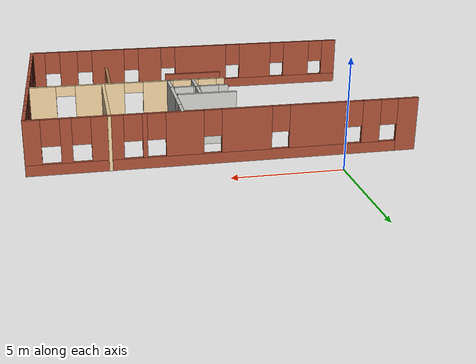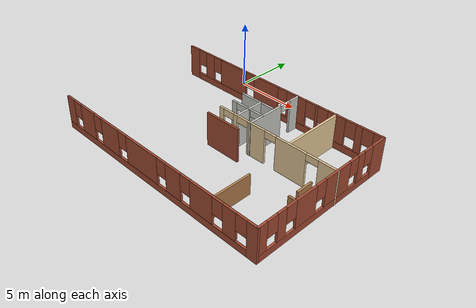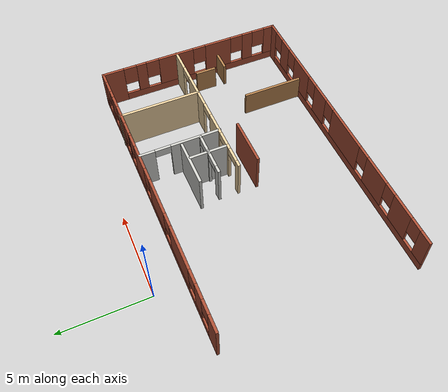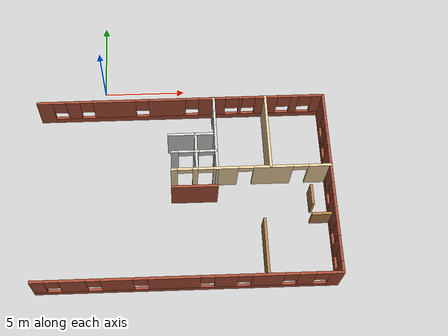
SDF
<sdf version="1.6">
 <model name="Building">
  <pose>4.29574 -7.32604 0 0 -0 0</pose>
  <link name="Wall_0">
   <pose>0.434915 5.53865 0 0 -0 0</pose>
   <visual name="Wall_0_Visual_0">
    <pose>-8.26944 0 1.25 0 -0 0</pose>
    <geometry><box><size>0.961111 0.15 2.5</size></box></geometry>
    <material>
     <script><uri>file://media/materials/scripts/gazebo.material</uri><name>Gazebo/Bricks</name></script>
     <ambient>1 1 1 1</ambient>
    </material>
    <meta><layer>0</layer></meta>
   </visual>
   <collision name="Wall_0_Collision_0">
    <geometry><box><size>0.961111 0.15 2.5</size></box></geometry>
    <pose>-8.26944 0 1.25 0 -0 0</pose>
   </collision>
   <visual name="Wall_0_Visual_1">
    <pose>0.480555 0 0.25 0 -0 0</pose>
    <geometry><box><size>16.5389 0.15 0.5</size></box></geometry>
    <material>
     <script><uri>file://media/materials/scripts/gazebo.material</uri><name>Gazebo/Bricks</name></script>
     <ambient>1 1 1 1</ambient>
    </material>
    <meta><layer>0</layer></meta>
   </visual>
   <collision name="Wall_0_Collision_1">
    <geometry><box><size>16.5389 0.15 0.5</size></box></geometry>
    <pose>0.480555 0 0.25 0 -0 0</pose>
   </collision>
   <visual name="Wall_0_Visual_2">
    <pose>-6.56423 0 1.5 0 -0 0</pose>
    <geometry><box><size>0.849313 0.15 2</size></box></geometry>
    <material>
     <script><uri>file://media/materials/scripts/gazebo.material</uri><name>Gazebo/Bricks</name></script>
     <ambient>1 1 1 1</ambient>
    </material>
    <meta><layer>0</layer></meta>
   </visual>
   <collision name="Wall_0_Collision_2">
    <geometry><box><size>0.849313 0.15 2</size></box></geometry>
    <pose>-6.56423 0 1.5 0 -0 0</pose>
   </collision>
   <visual name="Wall_0_Visual_3">
    <pose>-4.04638 0 1.5 0 -0 0</pose>
    <geometry><box><size>2.5864 0.15 2</size></box></geometry>
    <material>
     <script><uri>file://media/materials/scripts/gazebo.material</uri><name>Gazebo/Bricks</name></script>
     <ambient>1 1 1 1</ambient>
    </material>
    <meta><layer>0</layer></meta>
   </visual>
   <collision name="Wall_0_Collision_3">
    <geometry><box><size>2.5864 0.15 2</size></box></geometry>
    <pose>-4.04638 0 1.5 0 -0 0</pose>
   </collision>
   <visual name="Wall_0_Visual_4">
    <pose>-0.828204 0 1.5 0 -0 0</pose>
    <geometry><box><size>2.24994 0.15 2</size></box></geometry>
    <material>
     <script><uri>file://media/materials/scripts/gazebo.material</uri><name>Gazebo/Bricks</name></script>
     <ambient>1 1 1 1</ambient>
    </material>
    <meta><layer>0</layer></meta>
   </visual>
   <collision name="Wall_0_Collision_4">
    <geometry><box><size>2.24994 0.15 2</size></box></geometry>
    <pose>-0.828204 0 1.5 0 -0 0</pose>
   </collision>
   <visual name="Wall_0_Visual_5">
    <pose>1.92369 0 1.5 0 -0 0</pose>
    <geometry><box><size>1.65386 0.15 2</size></box></geometry>
    <material>
     <script><uri>file://media/materials/scripts/gazebo.material</uri><name>Gazebo/Bricks</name></script>
     <ambient>1 1 1 1</ambient>
    </material>
    <meta><layer>0</layer></meta>
   </visual>
   <collision name="Wall_0_Collision_5">
    <geometry><box><size>1.65386 0.15 2</size></box></geometry>
    <pose>1.92369 0 1.5 0 -0 0</pose>
   </collision>
   <visual name="Wall_0_Visual_6">
    <pose>3.65346 0 1.5 0 -0 0</pose>
    <geometry><box><size>0.205679 0.15 2</size></box></geometry>
    <material>
     <script><uri>file://media/materials/scripts/gazebo.material</uri><name>Gazebo/Bricks</name></script>
     <ambient>1 1 1 1</ambient>
    </material>
    <meta><layer>0</layer></meta>
   </visual>
   <collision name="Wall_0_Collision_6">
    <geometry><box><size>0.205679 0.15 2</size></box></geometry>
    <pose>3.65346 0 1.5 0 -0 0</pose>
   </collision>
   <visual name="Wall_0_Visual_7">
    <pose>5.24243 0 1.5 0 -0 0</pose>
    <geometry><box><size>1.37227 0.15 2</size></box></geometry>
    <material>
     <script><uri>file://media/materials/scripts/gazebo.material</uri><name>Gazebo/Bricks</name></script>
     <ambient>1 1 1 1</ambient>
    </material>
    <meta><layer>0</layer></meta>
   </visual>
   <collision name="Wall_0_Collision_7">
    <geometry><box><size>1.37227 0.15 2</size></box></geometry>
    <pose>5.24243 0 1.5 0 -0 0</pose>
   </collision>
   <visual name="Wall_0_Visual_8">
    <pose>6.9722 0 1.5 0 -0 0</pose>
    <geometry><box><size>0.487269 0.15 2</size></box></geometry>
    <material>
     <script><uri>file://media/materials/scripts/gazebo.material</uri><name>Gazebo/Bricks</name></script>
     <ambient>1 1 1 1</ambient>
    </material>
    <meta><layer>0</layer></meta>
   </visual>
   <collision name="Wall_0_Collision_8">
    <geometry><box><size>0.487269 0.15 2</size></box></geometry>
    <pose>6.9722 0 1.5 0 -0 0</pose>
   </collision>
   <visual name="Wall_0_Visual_9">
    <pose>8.38292 0 1.5 0 -0 0</pose>
    <geometry><box><size>0.734164 0.15 2</size></box></geometry>
    <material>
     <script><uri>file://media/materials/scripts/gazebo.material</uri><name>Gazebo/Bricks</name></script>
     <ambient>1 1 1 1</ambient>
    </material>
    <meta><layer>0</layer></meta>
   </visual>
   <collision name="Wall_0_Collision_9">
    <geometry><box><size>0.734164 0.15 2</size></box></geometry>
    <pose>8.38292 0 1.5 0 -0 0</pose>
   </collision>
   <visual name="Wall_0_Visual_10">
    <pose>-7.38889 0 1.9 0 -0 0</pose>
    <geometry><box><size>0.8 0.15 1.2</size></box></geometry>
    <material>
     <script><uri>file://media/materials/scripts/gazebo.material</uri><name>Gazebo/Bricks</name></script>
     <ambient>1 1 1 1</ambient>
    </material>
    <meta><layer>0</layer></meta>
   </visual>
   <collision name="Wall_0_Collision_10">
    <geometry><box><size>0.8 0.15 1.2</size></box></geometry>
    <pose>-7.38889 0 1.9 0 -0 0</pose>
   </collision>
   <visual name="Wall_0_Visual_11">
    <pose>-5.73958 0 1.9 0 -0 0</pose>
    <geometry><box><size>0.8 0.15 1.2</size></box></geometry>
    <material>
     <script><uri>file://media/materials/scripts/gazebo.material</uri><name>Gazebo/Bricks</name></script>
     <ambient>1 1 1 1</ambient>
    </material>
    <meta><layer>0</layer></meta>
   </visual>
   <collision name="Wall_0_Collision_11">
    <geometry><box><size>0.8 0.15 1.2</size></box></geometry>
    <pose>-5.73958 0 1.9 0 -0 0</pose>
   </collision>
   <visual name="Wall_0_Visual_12">
    <pose>-2.35317 0 1.9 0 -0 0</pose>
    <geometry><box><size>0.8 0.15 1.2</size></box></geometry>
    <material>
     <script><uri>file://media/materials/scripts/gazebo.material</uri><name>Gazebo/Bricks</name></script>
     <ambient>1 1 1 1</ambient>
    </material>
    <meta><layer>0</layer></meta>
   </visual>
   <collision name="Wall_0_Collision_12">
    <geometry><box><size>0.8 0.15 1.2</size></box></geometry>
    <pose>-2.35317 0 1.9 0 -0 0</pose>
   </collision>
   <visual name="Wall_0_Visual_13">
    <pose>0.696767 0 1.9 0 -0 0</pose>
    <geometry><box><size>0.8 0.15 1.2</size></box></geometry>
    <material>
     <script><uri>file://media/materials/scripts/gazebo.material</uri><name>Gazebo/Bricks</name></script>
     <ambient>1 1 1 1</ambient>
    </material>
    <meta><layer>0</layer></meta>
   </visual>
   <collision name="Wall_0_Collision_13">
    <geometry><box><size>0.8 0.15 1.2</size></box></geometry>
    <pose>0.696767 0 1.9 0 -0 0</pose>
   </collision>
   <visual name="Wall_0_Visual_14">
    <pose>3.15062 0 1.9 0 -0 0</pose>
    <geometry><box><size>0.8 0.15 1.2</size></box></geometry>
    <material>
     <script><uri>file://media/materials/scripts/gazebo.material</uri><name>Gazebo/Bricks</name></script>
     <ambient>1 1 1 1</ambient>
    </material>
    <meta><layer>0</layer></meta>
   </visual>
   <collision name="Wall_0_Collision_14">
    <geometry><box><size>0.8 0.15 1.2</size></box></geometry>
    <pose>3.15062 0 1.9 0 -0 0</pose>
   </collision>
   <visual name="Wall_0_Visual_15">
    <pose>4.1563 0 1.9 0 -0 0</pose>
    <geometry><box><size>0.8 0.15 1.2</size></box></geometry>
    <material>
     <script><uri>file://media/materials/scripts/gazebo.material</uri><name>Gazebo/Bricks</name></script>
     <ambient>1 1 1 1</ambient>
    </material>
    <meta><layer>0</layer></meta>
   </visual>
   <collision name="Wall_0_Collision_15">
    <geometry><box><size>0.8 0.15 1.2</size></box></geometry>
    <pose>4.1563 0 1.9 0 -0 0</pose>
   </collision>
   <visual name="Wall_0_Visual_16">
    <pose>6.32857 0 1.9 0 -0 0</pose>
    <geometry><box><size>0.8 0.15 1.2</size></box></geometry>
    <material>
     <script><uri>file://media/materials/scripts/gazebo.material</uri><name>Gazebo/Bricks</name></script>
     <ambient>1 1 1 1</ambient>
    </material>
    <meta><layer>0</layer></meta>
   </visual>
   <collision name="Wall_0_Collision_16">
    <geometry><box><size>0.8 0.15 1.2</size></box></geometry>
    <pose>6.32857 0 1.9 0 -0 0</pose>
   </collision>
   <visual name="Wall_0_Visual_17">
    <pose>7.61584 0 1.9 0 -0 0</pose>
    <geometry><box><size>0.8 0.15 1.2</size></box></geometry>
    <material>
     <script><uri>file://media/materials/scripts/gazebo.material</uri><name>Gazebo/Bricks</name></script>
     <ambient>1 1 1 1</ambient>
    </material>
    <meta><layer>0</layer></meta>
   </visual>
   <collision name="Wall_0_Collision_17">
    <geometry><box><size>0.8 0.15 1.2</size></box></geometry>
    <pose>7.61584 0 1.9 0 -0 0</pose>
   </collision>
  </link>
  <link name="Wall_2">
   <pose>9.10991 -0.011353 0 0 0 -1.5708</pose>
   <visual name="Wall_2_Visual_0">
    <pose>-4.96991 0 1.25 0 -0 0</pose>
    <geometry><box><size>1.31017 0.15 2.5</size></box></geometry>
    <material>
     <script><uri>file://media/materials/scripts/gazebo.material</uri><name>Gazebo/Bricks</name></script>
     <ambient>0 0.666667 0.498039 1</ambient>
    </material>
    <meta><layer>0</layer></meta>
   </visual>
   <collision name="Wall_2_Collision_0">
    <geometry><box><size>1.31017 0.15 2.5</size></box></geometry>
    <pose>-4.96991 0 1.25 0 -0 0</pose>
   </collision>
   <visual name="Wall_2_Visual_1">
    <pose>0.655087 0 0.25 0 -0 0</pose>
    <geometry><box><size>9.93983 0.15 0.5</size></box></geometry>
    <material>
     <script><uri>file://media/materials/scripts/gazebo.material</uri><name>Gazebo/Bricks</name></script>
     <ambient>0 0.666667 0.498039 1</ambient>
    </material>
    <meta><layer>0</layer></meta>
   </visual>
   <collision name="Wall_2_Collision_1">
    <geometry><box><size>9.93983 0.15 0.5</size></box></geometry>
    <pose>0.655087 0 0.25 0 -0 0</pose>
   </collision>
   <visual name="Wall_2_Visual_2">
    <pose>-3.21085 0 1.5 0 -0 0</pose>
    <geometry><box><size>0.60795 0.15 2</size></box></geometry>
    <material>
     <script><uri>file://media/materials/scripts/gazebo.material</uri><name>Gazebo/Bricks</name></script>
     <ambient>0 0.666667 0.498039 1</ambient>
    </material>
    <meta><layer>0</layer></meta>
   </visual>
   <collision name="Wall_2_Collision_2">
    <geometry><box><size>0.60795 0.15 2</size></box></geometry>
    <pose>-3.21085 0 1.5 0 -0 0</pose>
   </collision>
   <visual name="Wall_2_Visual_3">
    <pose>-0.992199 0 1.5 0 -0 0</pose>
    <geometry><box><size>2.22935 0.15 2</size></box></geometry>
    <material>
     <script><uri>file://media/materials/scripts/gazebo.material</uri><name>Gazebo/Bricks</name></script>
     <ambient>0 0.666667 0.498039 1</ambient>
    </material>
    <meta><layer>0</layer></meta>
   </visual>
   <collision name="Wall_2_Collision_3">
    <geometry><box><size>2.22935 0.15 2</size></box></geometry>
    <pose>-0.992199 0 1.5 0 -0 0</pose>
   </collision>
   <visual name="Wall_2_Visual_4">
    <pose>1.77153 0 1.5 0 -0 0</pose>
    <geometry><box><size>1.69811 0.15 2</size></box></geometry>
    <material>
     <script><uri>file://media/materials/scripts/gazebo.material</uri><name>Gazebo/Bricks</name></script>
     <ambient>0 0.666667 0.498039 1</ambient>
    </material>
    <meta><layer>0</layer></meta>
   </visual>
   <collision name="Wall_2_Collision_4">
    <geometry><box><size>1.69811 0.15 2</size></box></geometry>
    <pose>1.77153 0 1.5 0 -0 0</pose>
   </collision>
   <visual name="Wall_2_Visual_5">
    <pose>3.76076 0 1.5 0 -0 0</pose>
    <geometry><box><size>0.680358 0.15 2</size></box></geometry>
    <material>
     <script><uri>file://media/materials/scripts/gazebo.material</uri><name>Gazebo/Bricks</name></script>
     <ambient>0 0.666667 0.498039 1</ambient>
    </material>
    <meta><layer>0</layer></meta>
   </visual>
   <collision name="Wall_2_Collision_5">
    <geometry><box><size>0.680358 0.15 2</size></box></geometry>
    <pose>3.76076 0 1.5 0 -0 0</pose>
   </collision>
   <visual name="Wall_2_Visual_6">
    <pose>5.26297 0 1.5 0 -0 0</pose>
    <geometry><box><size>0.724057 0.15 2</size></box></geometry>
    <material>
     <script><uri>file://media/materials/scripts/gazebo.material</uri><name>Gazebo/Bricks</name></script>
     <ambient>0 0.666667 0.498039 1</ambient>
    </material>
    <meta><layer>0</layer></meta>
   </visual>
   <collision name="Wall_2_Collision_6">
    <geometry><box><size>0.724057 0.15 2</size></box></geometry>
    <pose>5.26297 0 1.5 0 -0 0</pose>
   </collision>
   <visual name="Wall_2_Visual_7">
    <pose>-3.91483 0 1.9 0 -0 0</pose>
    <geometry><box><size>0.8 0.15 1.2</size></box></geometry>
    <material>
     <script><uri>file://media/materials/scripts/gazebo.material</uri><name>Gazebo/Bricks</name></script>
     <ambient>0 0.666667 0.498039 1</ambient>
    </material>
    <meta><layer>0</layer></meta>
   </visual>
   <collision name="Wall_2_Collision_7">
    <geometry><box><size>0.8 0.15 1.2</size></box></geometry>
    <pose>-3.91483 0 1.9 0 -0 0</pose>
   </collision>
   <visual name="Wall_2_Visual_8">
    <pose>-2.50688 0 1.9 0 -0 0</pose>
    <geometry><box><size>0.8 0.15 1.2</size></box></geometry>
    <material>
     <script><uri>file://media/materials/scripts/gazebo.material</uri><name>Gazebo/Bricks</name></script>
     <ambient>0 0.666667 0.498039 1</ambient>
    </material>
    <meta><layer>0</layer></meta>
   </visual>
   <collision name="Wall_2_Collision_8">
    <geometry><box><size>0.8 0.15 1.2</size></box></geometry>
    <pose>-2.50688 0 1.9 0 -0 0</pose>
   </collision>
   <visual name="Wall_2_Visual_9">
    <pose>0.522479 0 1.9 0 -0 0</pose>
    <geometry><box><size>0.8 0.15 1.2</size></box></geometry>
    <material>
     <script><uri>file://media/materials/scripts/gazebo.material</uri><name>Gazebo/Bricks</name></script>
     <ambient>0 0.666667 0.498039 1</ambient>
    </material>
    <meta><layer>0</layer></meta>
   </visual>
   <collision name="Wall_2_Collision_9">
    <geometry><box><size>0.8 0.15 1.2</size></box></geometry>
    <pose>0.522479 0 1.9 0 -0 0</pose>
   </collision>
   <visual name="Wall_2_Visual_10">
    <pose>3.02059 0 1.9 0 -0 0</pose>
    <geometry><box><size>0.8 0.15 1.2</size></box></geometry>
    <material>
     <script><uri>file://media/materials/scripts/gazebo.material</uri><name>Gazebo/Bricks</name></script>
     <ambient>0 0.666667 0.498039 1</ambient>
    </material>
    <meta><layer>0</layer></meta>
   </visual>
   <collision name="Wall_2_Collision_10">
    <geometry><box><size>0.8 0.15 1.2</size></box></geometry>
    <pose>3.02059 0 1.9 0 -0 0</pose>
   </collision>
   <visual name="Wall_2_Visual_11">
    <pose>4.50094 0 1.9 0 -0 0</pose>
    <geometry><box><size>0.8 0.15 1.2</size></box></geometry>
    <material>
     <script><uri>file://media/materials/scripts/gazebo.material</uri><name>Gazebo/Bricks</name></script>
     <ambient>0 0.666667 0.498039 1</ambient>
    </material>
    <meta><layer>0</layer></meta>
   </visual>
   <collision name="Wall_2_Collision_11">
    <geometry><box><size>0.8 0.15 1.2</size></box></geometry>
    <pose>4.50094 0 1.9 0 -0 0</pose>
   </collision>
  </link>
  <link name="Wall_21">
   <collision name="Wall_21_Collision">
    <geometry><box><size>3.75 0.15 1.5</size></box></geometry>
    <pose>0 0 0.75 0 -0 0</pose>
   </collision>
   <visual name="Wall_21_Visual">
    <pose>0 0 0.75 0 -0 0</pose>
    <geometry><box><size>3.75 0.15 1.5</size></box></geometry>
    <material>
     <script><uri>file://media/materials/scripts/gazebo.material</uri><name>Gazebo/Wood</name></script>
     <ambient>1 1 1 1</ambient>
    </material>
    <meta><layer>0</layer></meta>
   </visual>
   <pose>5.09526 -3.75796 0 0 -0 1.5708</pose>
  </link>
  <link name="Wall_3">
   <pose>0.434915 -5.56135 0 0 -0 3.14159</pose>
   <visual name="Wall_3_Visual_0">
    <pose>-8.37149 0 1.25 0 -0 0</pose>
    <geometry><box><size>0.757013 0.15 2.5</size></box></geometry>
    <material>
     <script><uri>file://media/materials/scripts/gazebo.material</uri><name>Gazebo/Bricks</name></script>
     <ambient>1 1 1 1</ambient>
    </material>
    <meta><layer>0</layer></meta>
   </visual>
   <collision name="Wall_3_Collision_0">
    <geometry><box><size>0.757013 0.15 2.5</size></box></geometry>
    <pose>-8.37149 0 1.25 0 -0 0</pose>
   </collision>
   <visual name="Wall_3_Visual_1">
    <pose>0.378507 0 0.25 0 -0 0</pose>
    <geometry><box><size>16.743 0.15 0.5</size></box></geometry>
    <material>
     <script><uri>file://media/materials/scripts/gazebo.material</uri><name>Gazebo/Bricks</name></script>
     <ambient>1 1 1 1</ambient>
    </material>
    <meta><layer>0</layer></meta>
   </visual>
   <collision name="Wall_3_Collision_1">
    <geometry><box><size>16.743 0.15 0.5</size></box></geometry>
    <pose>0.378507 0 0.25 0 -0 0</pose>
   </collision>
   <visual name="Wall_3_Visual_2">
    <pose>-6.71402 0 1.5 0 -0 0</pose>
    <geometry><box><size>0.957926 0.15 2</size></box></geometry>
    <material>
     <script><uri>file://media/materials/scripts/gazebo.material</uri><name>Gazebo/Bricks</name></script>
     <ambient>1 1 1 1</ambient>
    </material>
    <meta><layer>0</layer></meta>
   </visual>
   <collision name="Wall_3_Collision_2">
    <geometry><box><size>0.957926 0.15 2</size></box></geometry>
    <pose>-6.71402 0 1.5 0 -0 0</pose>
   </collision>
   <visual name="Wall_3_Visual_3">
    <pose>-4.53975 0 1.5 0 -0 0</pose>
    <geometry><box><size>1.79063 0.15 2</size></box></geometry>
    <material>
     <script><uri>file://media/materials/scripts/gazebo.material</uri><name>Gazebo/Bricks</name></script>
     <ambient>1 1 1 1</ambient>
    </material>
    <meta><layer>0</layer></meta>
   </visual>
   <collision name="Wall_3_Collision_3">
    <geometry><box><size>1.79063 0.15 2</size></box></geometry>
    <pose>-4.53975 0 1.5 0 -0 0</pose>
   </collision>
   <visual name="Wall_3_Visual_4">
    <pose>-2.20356 0 1.5 0 -0 0</pose>
    <geometry><box><size>1.28175 0.15 2</size></box></geometry>
    <material>
     <script><uri>file://media/materials/scripts/gazebo.material</uri><name>Gazebo/Bricks</name></script>
     <ambient>1 1 1 1</ambient>
    </material>
    <meta><layer>0</layer></meta>
   </visual>
   <collision name="Wall_3_Collision_4">
    <geometry><box><size>1.28175 0.15 2</size></box></geometry>
    <pose>-2.20356 0 1.5 0 -0 0</pose>
   </collision>
   <visual name="Wall_3_Visual_5">
    <pose>0.710901 0 1.5 0 -0 0</pose>
    <geometry><box><size>2.94716 0.15 2</size></box></geometry>
    <material>
     <script><uri>file://media/materials/scripts/gazebo.material</uri><name>Gazebo/Bricks</name></script>
     <ambient>1 1 1 1</ambient>
    </material>
    <meta><layer>0</layer></meta>
   </visual>
   <collision name="Wall_3_Collision_5">
    <geometry><box><size>2.94716 0.15 2</size></box></geometry>
    <pose>0.710901 0 1.5 0 -0 0</pose>
   </collision>
   <visual name="Wall_3_Visual_6">
    <pose>3.90293 0 1.5 0 -0 0</pose>
    <geometry><box><size>1.83689 0.15 2</size></box></geometry>
    <material>
     <script><uri>file://media/materials/scripts/gazebo.material</uri><name>Gazebo/Bricks</name></script>
     <ambient>1 1 1 1</ambient>
    </material>
    <meta><layer>0</layer></meta>
   </visual>
   <collision name="Wall_3_Collision_6">
    <geometry><box><size>1.83689 0.15 2</size></box></geometry>
    <pose>3.90293 0 1.5 0 -0 0</pose>
   </collision>
   <visual name="Wall_3_Visual_7">
    <pose>6.3779 0 1.5 0 -0 0</pose>
    <geometry><box><size>1.51306 0.15 2</size></box></geometry>
    <material>
     <script><uri>file://media/materials/scripts/gazebo.material</uri><name>Gazebo/Bricks</name></script>
     <ambient>1 1 1 1</ambient>
    </material>
    <meta><layer>0</layer></meta>
   </visual>
   <collision name="Wall_3_Collision_7">
    <geometry><box><size>1.51306 0.15 2</size></box></geometry>
    <pose>6.3779 0 1.5 0 -0 0</pose>
   </collision>
   <visual name="Wall_3_Visual_8">
    <pose>8.34221 0 1.5 0 -0 0</pose>
    <geometry><box><size>0.815569 0.15 2</size></box></geometry>
    <material>
     <script><uri>file://media/materials/scripts/gazebo.material</uri><name>Gazebo/Bricks</name></script>
     <ambient>1 1 1 1</ambient>
    </material>
    <meta><layer>0</layer></meta>
   </visual>
   <collision name="Wall_3_Collision_8">
    <geometry><box><size>0.815569 0.15 2</size></box></geometry>
    <pose>8.34221 0 1.5 0 -0 0</pose>
   </collision>
   <visual name="Wall_3_Visual_9">
    <pose>-7.59299 0 1.9 0 -0 0</pose>
    <geometry><box><size>0.8 0.15 1.2</size></box></geometry>
    <material>
     <script><uri>file://media/materials/scripts/gazebo.material</uri><name>Gazebo/Bricks</name></script>
     <ambient>1 1 1 1</ambient>
    </material>
    <meta><layer>0</layer></meta>
   </visual>
   <collision name="Wall_3_Collision_9">
    <geometry><box><size>0.8 0.15 1.2</size></box></geometry>
    <pose>-7.59299 0 1.9 0 -0 0</pose>
   </collision>
   <visual name="Wall_3_Visual_10">
    <pose>-5.83506 0 1.9 0 -0 0</pose>
    <geometry><box><size>0.8 0.15 1.2</size></box></geometry>
    <material>
     <script><uri>file://media/materials/scripts/gazebo.material</uri><name>Gazebo/Bricks</name></script>
     <ambient>1 1 1 1</ambient>
    </material>
    <meta><layer>0</layer></meta>
   </visual>
   <collision name="Wall_3_Collision_10">
    <geometry><box><size>0.8 0.15 1.2</size></box></geometry>
    <pose>-5.83506 0 1.9 0 -0 0</pose>
   </collision>
   <visual name="Wall_3_Visual_11">
    <pose>-3.24443 0 1.9 0 -0 0</pose>
    <geometry><box><size>0.8 0.15 1.2</size></box></geometry>
    <material>
     <script><uri>file://media/materials/scripts/gazebo.material</uri><name>Gazebo/Bricks</name></script>
     <ambient>1 1 1 1</ambient>
    </material>
    <meta><layer>0</layer></meta>
   </visual>
   <collision name="Wall_3_Collision_11">
    <geometry><box><size>0.8 0.15 1.2</size></box></geometry>
    <pose>-3.24443 0 1.9 0 -0 0</pose>
   </collision>
   <visual name="Wall_3_Visual_12">
    <pose>-1.16268 0 1.9 0 -0 0</pose>
    <geometry><box><size>0.8 0.15 1.2</size></box></geometry>
    <material>
     <script><uri>file://media/materials/scripts/gazebo.material</uri><name>Gazebo/Bricks</name></script>
     <ambient>1 1 1 1</ambient>
    </material>
    <meta><layer>0</layer></meta>
   </visual>
   <collision name="Wall_3_Collision_12">
    <geometry><box><size>0.8 0.15 1.2</size></box></geometry>
    <pose>-1.16268 0 1.9 0 -0 0</pose>
   </collision>
   <visual name="Wall_3_Visual_13">
    <pose>2.58448 0 1.9 0 -0 0</pose>
    <geometry><box><size>0.8 0.15 1.2</size></box></geometry>
    <material>
     <script><uri>file://media/materials/scripts/gazebo.material</uri><name>Gazebo/Bricks</name></script>
     <ambient>1 1 1 1</ambient>
    </material>
    <meta><layer>0</layer></meta>
   </visual>
   <collision name="Wall_3_Collision_13">
    <geometry><box><size>0.8 0.15 1.2</size></box></geometry>
    <pose>2.58448 0 1.9 0 -0 0</pose>
   </collision>
   <visual name="Wall_3_Visual_14">
    <pose>5.22137 0 1.9 0 -0 0</pose>
    <geometry><box><size>0.8 0.15 1.2</size></box></geometry>
    <material>
     <script><uri>file://media/materials/scripts/gazebo.material</uri><name>Gazebo/Bricks</name></script>
     <ambient>1 1 1 1</ambient>
    </material>
    <meta><layer>0</layer></meta>
   </visual>
   <collision name="Wall_3_Collision_14">
    <geometry><box><size>0.8 0.15 1.2</size></box></geometry>
    <pose>5.22137 0 1.9 0 -0 0</pose>
   </collision>
   <visual name="Wall_3_Visual_15">
    <pose>7.53443 0 1.9 0 -0 0</pose>
    <geometry><box><size>0.8 0.15 1.2</size></box></geometry>
    <material>
     <script><uri>file://media/materials/scripts/gazebo.material</uri><name>Gazebo/Bricks</name></script>
     <ambient>1 1 1 1</ambient>
    </material>
    <meta><layer>0</layer></meta>
   </visual>
   <collision name="Wall_3_Collision_15">
    <geometry><box><size>0.8 0.15 1.2</size></box></geometry>
    <pose>7.53443 0 1.9 0 -0 0</pose>
   </collision>
  </link>
  <link name="Wall_48">
   <pose>4.44899 0.924331 0 0 -0 0</pose>
   <visual name="Wall_48_Visual_0">
    <pose>-4.55266 0 1.25 0 -0 0</pose>
    <geometry><box><size>0.394676 0.15 2.5</size></box></geometry>
    <material>
     <script><uri>file://media/materials/scripts/gazebo.material</uri><name>Gazebo/Grey</name></script>
     <ambient>0.921569 0.807843 0.615686 1</ambient>
    </material>
    <meta><layer>0</layer></meta>
   </visual>
   <collision name="Wall_48_Collision_0">
    <geometry><box><size>0.394676 0.15 2.5</size></box></geometry>
    <pose>-4.55266 0 1.25 0 -0 0</pose>
   </collision>
   <visual name="Wall_48_Visual_1">
    <pose>-3.29697 0 1.25 0 -0 0</pose>
    <geometry><box><size>0.3167 0.15 2.5</size></box></geometry>
    <material>
     <script><uri>file://media/materials/scripts/gazebo.material</uri><name>Gazebo/Grey</name></script>
     <ambient>0.921569 0.807843 0.615686 1</ambient>
    </material>
    <meta><layer>0</layer></meta>
   </visual>
   <collision name="Wall_48_Collision_1">
    <geometry><box><size>0.3167 0.15 2.5</size></box></geometry>
    <pose>-3.29697 0 1.25 0 -0 0</pose>
   </collision>
   <visual name="Wall_48_Visual_2">
    <pose>-1.50361 0 1.25 0 -0 0</pose>
    <geometry><box><size>1.47003 0.15 2.5</size></box></geometry>
    <material>
     <script><uri>file://media/materials/scripts/gazebo.material</uri><name>Gazebo/Grey</name></script>
     <ambient>0.921569 0.807843 0.615686 1</ambient>
    </material>
    <meta><layer>0</layer></meta>
   </visual>
   <collision name="Wall_48_Collision_2">
    <geometry><box><size>1.47003 0.15 2.5</size></box></geometry>
    <pose>-1.50361 0 1.25 0 -0 0</pose>
   </collision>
   <visual name="Wall_48_Visual_3">
    <pose>1.29486 0 1.25 0 -0 0</pose>
    <geometry><box><size>2.3269 0.15 2.5</size></box></geometry>
    <material>
     <script><uri>file://media/materials/scripts/gazebo.material</uri><name>Gazebo/Grey</name></script>
     <ambient>0.921569 0.807843 0.615686 1</ambient>
    </material>
    <meta><layer>0</layer></meta>
   </visual>
   <collision name="Wall_48_Collision_3">
    <geometry><box><size>2.3269 0.15 2.5</size></box></geometry>
    <pose>1.29486 0 1.25 0 -0 0</pose>
   </collision>
   <visual name="Wall_48_Visual_4">
    <pose>4.05415 0 1.25 0 -0 0</pose>
    <geometry><box><size>1.39169 0.15 2.5</size></box></geometry>
    <material>
     <script><uri>file://media/materials/scripts/gazebo.material</uri><name>Gazebo/Grey</name></script>
     <ambient>0.921569 0.807843 0.615686 1</ambient>
    </material>
    <meta><layer>0</layer></meta>
   </visual>
   <collision name="Wall_48_Collision_4">
    <geometry><box><size>1.39169 0.15 2.5</size></box></geometry>
    <pose>4.05415 0 1.25 0 -0 0</pose>
   </collision>
   <visual name="Wall_48_Visual_5">
    <pose>-3.90532 0 2.25 0 -0 0</pose>
    <geometry><box><size>0.9 0.15 0.5</size></box></geometry>
    <material>
     <script><uri>file://media/materials/scripts/gazebo.material</uri><name>Gazebo/Grey</name></script>
     <ambient>0.921569 0.807843 0.615686 1</ambient>
    </material>
    <meta><layer>0</layer></meta>
   </visual>
   <collision name="Wall_48_Collision_5">
    <geometry><box><size>0.9 0.15 0.5</size></box></geometry>
    <pose>-3.90532 0 2.25 0 -0 0</pose>
   </collision>
   <visual name="Wall_48_Visual_6">
    <pose>-2.68862 0 2.25 0 -0 0</pose>
    <geometry><box><size>0.9 0.15 0.5</size></box></geometry>
    <material>
     <script><uri>file://media/materials/scripts/gazebo.material</uri><name>Gazebo/Grey</name></script>
     <ambient>0.921569 0.807843 0.615686 1</ambient>
    </material>
    <meta><layer>0</layer></meta>
   </visual>
   <collision name="Wall_48_Collision_6">
    <geometry><box><size>0.9 0.15 0.5</size></box></geometry>
    <pose>-2.68862 0 2.25 0 -0 0</pose>
   </collision>
   <visual name="Wall_48_Visual_7">
    <pose>-0.318588 0 2.25 0 -0 0</pose>
    <geometry><box><size>0.9 0.15 0.5</size></box></geometry>
    <material>
     <script><uri>file://media/materials/scripts/gazebo.material</uri><name>Gazebo/Grey</name></script>
     <ambient>0.921569 0.807843 0.615686 1</ambient>
    </material>
    <meta><layer>0</layer></meta>
   </visual>
   <collision name="Wall_48_Collision_7">
    <geometry><box><size>0.9 0.15 0.5</size></box></geometry>
    <pose>-0.318588 0 2.25 0 -0 0</pose>
   </collision>
   <visual name="Wall_48_Visual_8">
    <pose>2.90831 0 2.25 0 -0 0</pose>
    <geometry><box><size>0.9 0.15 0.5</size></box></geometry>
    <material>
     <script><uri>file://media/materials/scripts/gazebo.material</uri><name>Gazebo/Grey</name></script>
     <ambient>0.921569 0.807843 0.615686 1</ambient>
    </material>
    <meta><layer>0</layer></meta>
   </visual>
   <collision name="Wall_48_Collision_8">
    <geometry><box><size>0.9 0.15 0.5</size></box></geometry>
    <pose>2.90831 0 2.25 0 -0 0</pose>
   </collision>
  </link>
  <link name="Wall_50">
   <collision name="Wall_50_Collision">
    <geometry><box><size>4.75 0.15 2.5</size></box></geometry>
    <pose>0 0 1.25 0 -0 0</pose>
   </collision>
   <visual name="Wall_50_Visual">
    <pose>0 0 1.25 0 -0 0</pose>
    <geometry><box><size>4.75 0.15 2.5</size></box></geometry>
    <material>
     <script><uri>file://media/materials/scripts/gazebo.material</uri><name>Gazebo/Grey</name></script>
     <ambient>0.921569 0.807843 0.615686 1</ambient>
    </material>
    <meta><layer>0</layer></meta>
   </visual>
   <pose>5.58515 3.27821 0 0 0 -1.5708</pose>
  </link>
  <link name="Wall_52">
   <pose>2.4376 3.19886 0 0 0 -1.5708</pose>
   <visual name="Wall_52_Visual_0">
    <pose>-1.91753 0 1.25 0 -0 0</pose>
    <geometry><box><size>0.914932 0.15 2.5</size></box></geometry>
    <material>
     <script><uri>file://media/materials/scripts/gazebo.material</uri><name>Gazebo/CeilingTiled</name></script>
     <ambient>1 1 1 1</ambient>
    </material>
    <meta><layer>0</layer></meta>
   </visual>
   <collision name="Wall_52_Collision_0">
    <geometry><box><size>0.914932 0.15 2.5</size></box></geometry>
    <pose>-1.91753 0 1.25 0 -0 0</pose>
   </collision>
   <visual name="Wall_52_Visual_1">
    <pose>0.907466 0 1.25 0 -0 0</pose>
    <geometry><box><size>2.93507 0.15 2.5</size></box></geometry>
    <material>
     <script><uri>file://media/materials/scripts/gazebo.material</uri><name>Gazebo/CeilingTiled</name></script>
     <ambient>1 1 1 1</ambient>
    </material>
    <meta><layer>0</layer></meta>
   </visual>
   <collision name="Wall_52_Collision_1">
    <geometry><box><size>2.93507 0.15 2.5</size></box></geometry>
    <pose>0.907466 0 1.25 0 -0 0</pose>
   </collision>
   <visual name="Wall_52_Visual_2">
    <pose>-1.01007 0 2.25 0 -0 0</pose>
    <geometry><box><size>0.9 0.15 0.5</size></box></geometry>
    <material>
     <script><uri>file://media/materials/scripts/gazebo.material</uri><name>Gazebo/CeilingTiled</name></script>
     <ambient>1 1 1 1</ambient>
    </material>
    <meta><layer>0</layer></meta>
   </visual>
   <collision name="Wall_52_Collision_2">
    <geometry><box><size>0.9 0.15 0.5</size></box></geometry>
    <pose>-1.01007 0 2.25 0 -0 0</pose>
   </collision>
  </link>
  <link name="Wall_54">
   <collision name="Wall_54_Collision">
    <geometry><box><size>2.75 0.15 2.5</size></box></geometry>
    <pose>0 0 1.25 0 -0 0</pose>
   </collision>
   <visual name="Wall_54_Visual">
    <pose>0 0 1.25 0 -0 0</pose>
    <geometry><box><size>2.75 0.15 2.5</size></box></geometry>
    <material>
     <script><uri>file://media/materials/scripts/gazebo.material</uri><name>Gazebo/CeilingTiled</name></script>
     <ambient>1 1 1 1</ambient>
    </material>
    <meta><layer>0</layer></meta>
   </visual>
   <pose>0.947545 3.17229 0 0 -0 0</pose>
  </link>
  <link name="Wall_56">
   <collision name="Wall_56_Collision">
    <geometry><box><size>2.25 0.15 2.5</size></box></geometry>
    <pose>0 0 1.25 0 -0 0</pose>
   </collision>
   <visual name="Wall_56_Visual">
    <pose>0 0 1.25 0 -0 0</pose>
    <geometry><box><size>2.25 0.15 2.5</size></box></geometry>
    <material>
     <script><uri>file://media/materials/scripts/gazebo.material</uri><name>Gazebo/CeilingTiled</name></script>
     <ambient>1 1 1 1</ambient>
    </material>
    <meta><layer>0</layer></meta>
   </visual>
   <pose>1.24327 2.09431 0 0 0 -1.5708</pose>
  </link>
  <link name="Wall_58">
   <pose>1.11364 2.04928 0 0 -0 0</pose>
   <visual name="Wall_58_Visual_0">
    <pose>-1.15186 0 1.25 0 -0 0</pose>
    <geometry><box><size>0.446272 0.15 2.5</size></box></geometry>
    <material>
     <script><uri>file://media/materials/scripts/gazebo.material</uri><name>Gazebo/CeilingTiled</name></script>
     <ambient>1 1 1 1</ambient>
    </material>
    <meta><layer>0</layer></meta>
   </visual>
   <collision name="Wall_58_Collision_0">
    <geometry><box><size>0.446272 0.15 2.5</size></box></geometry>
    <pose>-1.15186 0 1.25 0 -0 0</pose>
   </collision>
   <visual name="Wall_58_Visual_1">
    <pose>0.129622 0 1.25 0 -0 0</pose>
    <geometry><box><size>0.3167 0.15 2.5</size></box></geometry>
    <material>
     <script><uri>file://media/materials/scripts/gazebo.material</uri><name>Gazebo/CeilingTiled</name></script>
     <ambient>1 1 1 1</ambient>
    </material>
    <meta><layer>0</layer></meta>
   </visual>
   <collision name="Wall_58_Collision_1">
    <geometry><box><size>0.3167 0.15 2.5</size></box></geometry>
    <pose>0.129622 0 1.25 0 -0 0</pose>
   </collision>
   <visual name="Wall_58_Visual_2">
    <pose>1.28149 0 1.25 0 -0 0</pose>
    <geometry><box><size>0.187028 0.15 2.5</size></box></geometry>
    <material>
     <script><uri>file://media/materials/scripts/gazebo.material</uri><name>Gazebo/CeilingTiled</name></script>
     <ambient>1 1 1 1</ambient>
    </material>
    <meta><layer>0</layer></meta>
   </visual>
   <collision name="Wall_58_Collision_2">
    <geometry><box><size>0.187028 0.15 2.5</size></box></geometry>
    <pose>1.28149 0 1.25 0 -0 0</pose>
   </collision>
   <visual name="Wall_58_Visual_3">
    <pose>-0.478728 0 2.25 0 -0 0</pose>
    <geometry><box><size>0.9 0.15 0.5</size></box></geometry>
    <material>
     <script><uri>file://media/materials/scripts/gazebo.material</uri><name>Gazebo/CeilingTiled</name></script>
     <ambient>1 1 1 1</ambient>
    </material>
    <meta><layer>0</layer></meta>
   </visual>
   <collision name="Wall_58_Collision_3">
    <geometry><box><size>0.9 0.15 0.5</size></box></geometry>
    <pose>-0.478728 0 2.25 0 -0 0</pose>
   </collision>
   <visual name="Wall_58_Visual_4">
    <pose>0.737972 0 2.25 0 -0 0</pose>
    <geometry><box><size>0.9 0.15 0.5</size></box></geometry>
    <material>
     <script><uri>file://media/materials/scripts/gazebo.material</uri><name>Gazebo/CeilingTiled</name></script>
     <ambient>1 1 1 1</ambient>
    </material>
    <meta><layer>0</layer></meta>
   </visual>
   <collision name="Wall_58_Collision_4">
    <geometry><box><size>0.9 0.15 0.5</size></box></geometry>
    <pose>0.737972 0 2.25 0 -0 0</pose>
   </collision>
  </link>
  <link name="Wall_60">
   <collision name="Wall_60_Collision">
    <geometry><box><size>1.25 0.15 1.5</size></box></geometry>
    <pose>0 0 0.75 0 -0 0</pose>
   </collision>
   <visual name="Wall_60_Visual">
    <pose>0 0 0.75 0 -0 0</pose>
    <geometry><box><size>1.25 0.15 1.5</size></box></geometry>
    <material>
     <script><uri>file://media/materials/scripts/gazebo.material</uri><name>Gazebo/Wood</name></script>
     <ambient>1 1 1 1</ambient>
    </material>
    <meta><layer>0</layer></meta>
   </visual>
   <pose>8.50626 -1.72796 0 0 -0 3.14159</pose>
  </link>
  <link name="Wall_62">
   <collision name="Wall_62_Collision">
    <geometry><box><size>1.25 0.15 1.5</size></box></geometry>
    <pose>0 0 0.75 0 -0 0</pose>
   </collision>
   <visual name="Wall_62_Visual">
    <pose>0 0 0.75 0 -0 0</pose>
    <geometry><box><size>1.25 0.15 1.5</size></box></geometry>
    <material>
     <script><uri>file://media/materials/scripts/gazebo.material</uri><name>Gazebo/Wood</name></script>
     <ambient>1 1 1 1</ambient>
    </material>
    <meta><layer>0</layer></meta>
   </visual>
   <pose>8.01026 -0.507962 0 0 0 -1.5708</pose>
  </link>
  <link name="Wall_66">
   <collision name="Wall_66_Collision">
    <geometry><box><size>2.75 0.15 2.5</size></box></geometry>
    <pose>0 0 1.25 0 -0 0</pose>
   </collision>
   <visual name="Wall_66_Visual">
    <pose>0 0 1.25 0 -0 0</pose>
    <geometry><box><size>2.75 0.15 2.5</size></box></geometry>
    <material>
     <script><uri>file://media/materials/scripts/gazebo.material</uri><name>Gazebo/Bricks</name></script>
     <ambient>1 1 1 1</ambient>
    </material>
    <meta><layer>0</layer></meta>
   </visual>
   <pose>1.07399 -0.175669 0 0 -0 0</pose>
  </link>
  <static>1</static>
 </model>
</sdf>
